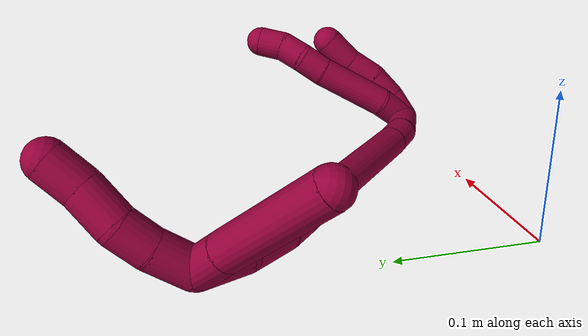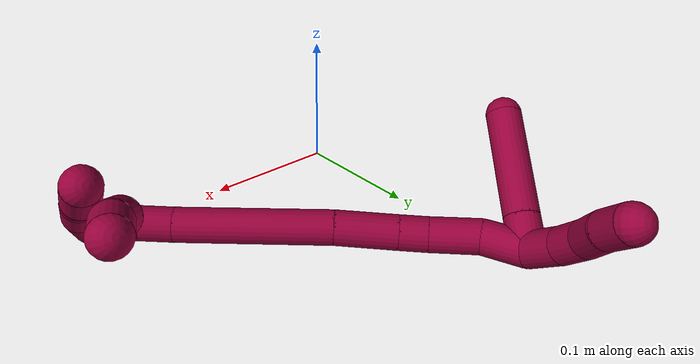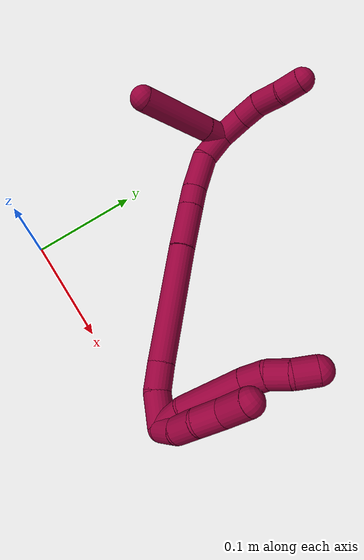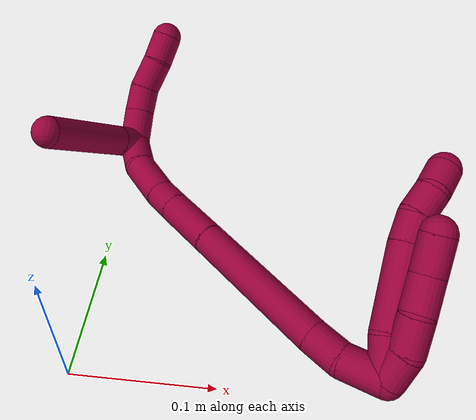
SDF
<sdf version="1.7">
 <world name="default">
  <model name="8">
   <static>0</static>
   <link name="8">
    <collision name="collision-cylinder-e_1_2_8">
     <pose>-0.001921 -0.00216 0.013846 0.154784 -0.136217 -0.01058</pose>
     <geometry><cylinder><radius>0.0125</radius><length>0.028288</length></cylinder></geometry>
     <surface>
      <friction><ode><mu>1.16</mu><mu2>1.16</mu2><slip1>0</slip1><slip2>0</slip2></ode></friction>
      <contact><ode><kp>1e+06</kp><kd>1</kd><max_vel>0</max_vel><min_depth>0.001</min_depth></ode></contact>
     </surface>
    </collision>
    <visual name="visual-cylinder-e_1_2_8">
     <pose>-0.001921 -0.00216 0.013846 0.154784 -0.136217 -0.01058</pose>
     <geometry><cylinder><radius>0.0125</radius><length>0.028288</length></cylinder></geometry>
     <material><ambient>0.584314 0 0.227451 1</ambient></material>
    </visual>
    <collision name="collision-cylinder-e_2_8_9">
     <pose>-0.00104 -0.010513 0.056921 0.208763 0.093497 0.009802</pose>
     <geometry><cylinder><radius>0.0125</radius><length>0.060018</length></cylinder></geometry>
     <surface>
      <friction><ode><mu>1.16</mu><mu2>1.16</mu2><slip1>0</slip1><slip2>0</slip2></ode></friction>
      <contact><ode><kp>1e+06</kp><kd>1</kd><max_vel>0</max_vel><min_depth>0.001</min_depth></ode></contact>
     </surface>
    </collision>
    <visual name="visual-cylinder-e_2_8_9">
     <pose>-0.00104 -0.010513 0.056921 0.208763 0.093497 0.009802</pose>
     <geometry><cylinder><radius>0.0125</radius><length>0.060018</length></cylinder></geometry>
     <material><ambient>0.584314 0 0.227451 1</ambient></material>
    </visual>
    <collision name="collision-cylinder-e_3_9_10">
     <pose>0.00282 -0.02027 0.096038 0.346049 0.100375 0.017557</pose>
     <geometry><cylinder><radius>0.0125</radius><length>0.021128</length></cylinder></geometry>
     <surface>
      <friction><ode><mu>1.16</mu><mu2>1.16</mu2><slip1>0</slip1><slip2>0</slip2></ode></friction>
      <contact><ode><kp>1e+06</kp><kd>1</kd><max_vel>0</max_vel><min_depth>0.001</min_depth></ode></contact>
     </surface>
    </collision>
    <visual name="visual-cylinder-e_3_9_10">
     <pose>0.00282 -0.02027 0.096038 0.346049 0.100375 0.017557</pose>
     <geometry><cylinder><radius>0.0125</radius><length>0.021128</length></cylinder></geometry>
     <material><ambient>0.584314 0 0.227451 1</ambient></material>
    </visual>
    <collision name="collision-cylinder-e_4_10_11">
     <pose>0.007351 -0.028428 0.11428 0.502607 0.349292 0.090535</pose>
     <geometry><cylinder><radius>0.0125</radius><length>0.020292</length></cylinder></geometry>
     <surface>
      <friction><ode><mu>1.16</mu><mu2>1.16</mu2><slip1>0</slip1><slip2>0</slip2></ode></friction>
      <contact><ode><kp>1e+06</kp><kd>1</kd><max_vel>0</max_vel><min_depth>0.001</min_depth></ode></contact>
     </surface>
    </collision>
    <visual name="visual-cylinder-e_4_10_11">
     <pose>0.007351 -0.028428 0.11428 0.502607 0.349292 0.090535</pose>
     <geometry><cylinder><radius>0.0125</radius><length>0.020292</length></cylinder></geometry>
     <material><ambient>0.584314 0 0.227451 1</ambient></material>
    </visual>
    <collision name="collision-cylinder-e_5_11_6">
     <pose>0.015675 -0.034718 0.131371 0.191988 0.499051 0.049066</pose>
     <geometry><cylinder><radius>0.0125</radius><length>0.020273</length></cylinder></geometry>
     <surface>
      <friction><ode><mu>1.16</mu><mu2>1.16</mu2><slip1>0</slip1><slip2>0</slip2></ode></friction>
      <contact><ode><kp>1e+06</kp><kd>1</kd><max_vel>0</max_vel><min_depth>0.001</min_depth></ode></contact>
     </surface>
    </collision>
    <visual name="visual-cylinder-e_5_11_6">
     <pose>0.015675 -0.034718 0.131371 0.191988 0.499051 0.049066</pose>
     <geometry><cylinder><radius>0.0125</radius><length>0.020273</length></cylinder></geometry>
     <material><ambient>0.584314 0 0.227451 1</ambient></material>
    </visual>
    <collision name="collision-cylinder-e_1_2_12">
     <pose>-0.000327 -0.007881 0.007953 0.78085 -0.029163 -0.012003</pose>
     <geometry><cylinder><radius>0.0125</radius><length>0.022404</length></cylinder></geometry>
     <surface>
      <friction><ode><mu>1.16</mu><mu2>1.16</mu2><slip1>0</slip1><slip2>0</slip2></ode></friction>
      <contact><ode><kp>1e+06</kp><kd>1</kd><max_vel>0</max_vel><min_depth>0.001</min_depth></ode></contact>
     </surface>
    </collision>
    <visual name="visual-cylinder-e_1_2_12">
     <pose>-0.000327 -0.007881 0.007953 0.78085 -0.029163 -0.012003</pose>
     <geometry><cylinder><radius>0.0125</radius><length>0.022404</length></cylinder></geometry>
     <material><ambient>0.584314 0 0.227451 1</ambient></material>
    </visual>
    <collision name="collision-cylinder-e_2_12_13">
     <pose>-0.002012 -0.021256 0.026892 0.463703 -0.110179 -0.026038</pose>
     <geometry><cylinder><radius>0.0125</radius><length>0.024713</length></cylinder></geometry>
     <surface>
      <friction><ode><mu>1.16</mu><mu2>1.16</mu2><slip1>0</slip1><slip2>0</slip2></ode></friction>
      <contact><ode><kp>1e+06</kp><kd>1</kd><max_vel>0</max_vel><min_depth>0.001</min_depth></ode></contact>
     </surface>
    </collision>
    <visual name="visual-cylinder-e_2_12_13">
     <pose>-0.002012 -0.021256 0.026892 0.463703 -0.110179 -0.026038</pose>
     <geometry><cylinder><radius>0.0125</radius><length>0.024713</length></cylinder></geometry>
     <material><ambient>0.584314 0 0.227451 1</ambient></material>
    </visual>
    <collision name="collision-cylinder-e_3_13_14">
     <pose>-0.002332 -0.030551 0.05012 0.301121 0.080819 0.012268</pose>
     <geometry><cylinder><radius>0.0125</radius><length>0.025725</length></cylinder></geometry>
     <surface>
      <friction><ode><mu>1.16</mu><mu2>1.16</mu2><slip1>0</slip1><slip2>0</slip2></ode></friction>
      <contact><ode><kp>1e+06</kp><kd>1</kd><max_vel>0</max_vel><min_depth>0.001</min_depth></ode></contact>
     </surface>
    </collision>
    <visual name="visual-cylinder-e_3_13_14">
     <pose>-0.002332 -0.030551 0.05012 0.301121 0.080819 0.012268</pose>
     <geometry><cylinder><radius>0.0125</radius><length>0.025725</length></cylinder></geometry>
     <material><ambient>0.584314 0 0.227451 1</ambient></material>
    </visual>
    <collision name="collision-cylinder-e_4_14_5">
     <pose>-0.002662 -0.039947 0.074661 0.42682 -0.100933 -0.021891</pose>
     <geometry><cylinder><radius>0.0125</radius><length>0.027159</length></cylinder></geometry>
     <surface>
      <friction><ode><mu>1.16</mu><mu2>1.16</mu2><slip1>0</slip1><slip2>0</slip2></ode></friction>
      <contact><ode><kp>1e+06</kp><kd>1</kd><max_vel>0</max_vel><min_depth>0.001</min_depth></ode></contact>
     </surface>
    </collision>
    <visual name="visual-cylinder-e_4_14_5">
     <pose>-0.002662 -0.039947 0.074661 0.42682 -0.100933 -0.021891</pose>
     <geometry><cylinder><radius>0.0125</radius><length>0.027159</length></cylinder></geometry>
     <material><ambient>0.584314 0 0.227451 1</ambient></material>
    </visual>
    <collision name="collision-cylinder-e_1_2_15">
     <pose>-0.007463 0.012323 0.005769 -1.13293 -0.501648 0.323067</pose>
     <geometry><cylinder><radius>0.0125</radius><length>0.031038</length></cylinder></geometry>
     <surface>
      <friction><ode><mu>1.16</mu><mu2>1.16</mu2><slip1>0</slip1><slip2>0</slip2></ode></friction>
      <contact><ode><kp>1e+06</kp><kd>1</kd><max_vel>0</max_vel><min_depth>0.001</min_depth></ode></contact>
     </surface>
    </collision>
    <visual name="visual-cylinder-e_1_2_15">
     <pose>-0.007463 0.012323 0.005769 -1.13293 -0.501648 0.323067</pose>
     <geometry><cylinder><radius>0.0125</radius><length>0.031038</length></cylinder></geometry>
     <material><ambient>0.584314 0 0.227451 1</ambient></material>
    </visual>
    <collision name="collision-cylinder-e_2_15_16">
     <pose>-0.019131 0.033748 0.019253 -0.867719 -0.338937 0.158219</pose>
     <geometry><cylinder><radius>0.0125</radius><length>0.025303</length></cylinder></geometry>
     <surface>
      <friction><ode><mu>1.16</mu><mu2>1.16</mu2><slip1>0</slip1><slip2>0</slip2></ode></friction>
      <contact><ode><kp>1e+06</kp><kd>1</kd><max_vel>0</max_vel><min_depth>0.001</min_depth></ode></contact>
     </surface>
    </collision>
    <visual name="visual-cylinder-e_2_15_16">
     <pose>-0.019131 0.033748 0.019253 -0.867719 -0.338937 0.158219</pose>
     <geometry><cylinder><radius>0.0125</radius><length>0.025303</length></cylinder></geometry>
     <material><ambient>0.584314 0 0.227451 1</ambient></material>
    </visual>
    <collision name="collision-cylinder-e_3_16_17">
     <pose>-0.042279 0.080514 0.063514 -0.800447 -0.346368 0.147747</pose>
     <geometry><cylinder><radius>0.0125</radius><length>0.111587</length></cylinder></geometry>
     <surface>
      <friction><ode><mu>1.16</mu><mu2>1.16</mu2><slip1>0</slip1><slip2>0</slip2></ode></friction>
      <contact><ode><kp>1e+06</kp><kd>1</kd><max_vel>0</max_vel><min_depth>0.001</min_depth></ode></contact>
     </surface>
    </collision>
    <visual name="visual-cylinder-e_3_16_17">
     <pose>-0.042279 0.080514 0.063514 -0.800447 -0.346368 0.147747</pose>
     <geometry><cylinder><radius>0.0125</radius><length>0.111587</length></cylinder></geometry>
     <material><ambient>0.584314 0 0.227451 1</ambient></material>
    </visual>
    <collision name="collision-cylinder-e_4_17_18">
     <pose>-0.0676 0.133742 0.114365 -0.827591 -0.293124 0.129474</pose>
     <geometry><cylinder><radius>0.0125</radius><length>0.044163</length></cylinder></geometry>
     <surface>
      <friction><ode><mu>1.16</mu><mu2>1.16</mu2><slip1>0</slip1><slip2>0</slip2></ode></friction>
      <contact><ode><kp>1e+06</kp><kd>1</kd><max_vel>0</max_vel><min_depth>0.001</min_depth></ode></contact>
     </surface>
    </collision>
    <visual name="visual-cylinder-e_4_17_18">
     <pose>-0.0676 0.133742 0.114365 -0.827591 -0.293124 0.129474</pose>
     <geometry><cylinder><radius>0.0125</radius><length>0.044163</length></cylinder></geometry>
     <material><ambient>0.584314 0 0.227451 1</ambient></material>
    </visual>
    <collision name="collision-cylinder-e_5_18_19">
     <pose>-0.077022 0.156472 0.135474 -0.811148 -0.298549 0.128972</pose>
     <geometry><cylinder><radius>0.0125</radius><length>0.020679</length></cylinder></geometry>
     <surface>
      <friction><ode><mu>1.16</mu><mu2>1.16</mu2><slip1>0</slip1><slip2>0</slip2></ode></friction>
      <contact><ode><kp>1e+06</kp><kd>1</kd><max_vel>0</max_vel><min_depth>0.001</min_depth></ode></contact>
     </surface>
    </collision>
    <visual name="visual-cylinder-e_5_18_19">
     <pose>-0.077022 0.156472 0.135474 -0.811148 -0.298549 0.128972</pose>
     <geometry><cylinder><radius>0.0125</radius><length>0.020679</length></cylinder></geometry>
     <material><ambient>0.584314 0 0.227451 1</ambient></material>
    </visual>
    <collision name="collision-cylinder-e_6_19_20">
     <pose>-0.085104 0.174415 0.155816 -0.672426 -0.283535 0.099677</pose>
     <geometry><cylinder><radius>0.0125</radius><length>0.036044</length></cylinder></geometry>
     <surface>
      <friction><ode><mu>1.16</mu><mu2>1.16</mu2><slip1>0</slip1><slip2>0</slip2></ode></friction>
      <contact><ode><kp>1e+06</kp><kd>1</kd><max_vel>0</max_vel><min_depth>0.001</min_depth></ode></contact>
     </surface>
    </collision>
    <visual name="visual-cylinder-e_6_19_20">
     <pose>-0.085104 0.174415 0.155816 -0.672426 -0.283535 0.099677</pose>
     <geometry><cylinder><radius>0.0125</radius><length>0.036044</length></cylinder></geometry>
     <material><ambient>0.584314 0 0.227451 1</ambient></material>
    </visual>
    <collision name="collision-cylinder-e_7_20_1">
     <pose>-0.089774 0.192929 0.182885 -0.519354 0.023828 -0.006331</pose>
     <geometry><cylinder><radius>0.0125</radius><length>0.031187</length></cylinder></geometry>
     <surface>
      <friction><ode><mu>1.16</mu><mu2>1.16</mu2><slip1>0</slip1><slip2>0</slip2></ode></friction>
      <contact><ode><kp>1e+06</kp><kd>1</kd><max_vel>0</max_vel><min_depth>0.001</min_depth></ode></contact>
     </surface>
    </collision>
    <visual name="visual-cylinder-e_7_20_1">
     <pose>-0.089774 0.192929 0.182885 -0.519354 0.023828 -0.006331</pose>
     <geometry><cylinder><radius>0.0125</radius><length>0.031187</length></cylinder></geometry>
     <material><ambient>0.584314 0 0.227451 1</ambient></material>
    </visual>
    <collision name="collision-cylinder-e_1_1_21">
     <pose>-0.090385 0.198108 0.210383 0.181237 -0.069081 -0.00628</pose>
     <geometry><cylinder><radius>0.0125</radius><length>0.028461</length></cylinder></geometry>
     <surface>
      <friction><ode><mu>1.16</mu><mu2>1.16</mu2><slip1>0</slip1><slip2>0</slip2></ode></friction>
      <contact><ode><kp>1e+06</kp><kd>1</kd><max_vel>0</max_vel><min_depth>0.001</min_depth></ode></contact>
     </surface>
    </collision>
    <visual name="visual-cylinder-e_1_1_21">
     <pose>-0.090385 0.198108 0.210383 0.181237 -0.069081 -0.00628</pose>
     <geometry><cylinder><radius>0.0125</radius><length>0.028461</length></cylinder></geometry>
     <material><ambient>0.584314 0 0.227451 1</ambient></material>
    </visual>
    <collision name="collision-cylinder-e_2_21_22">
     <pose>-0.092328 0.191897 0.234667 0.340087 -0.087493 -0.015032</pose>
     <geometry><cylinder><radius>0.0125</radius><length>0.021978</length></cylinder></geometry>
     <surface>
      <friction><ode><mu>1.16</mu><mu2>1.16</mu2><slip1>0</slip1><slip2>0</slip2></ode></friction>
      <contact><ode><kp>1e+06</kp><kd>1</kd><max_vel>0</max_vel><min_depth>0.001</min_depth></ode></contact>
     </surface>
    </collision>
    <visual name="visual-cylinder-e_2_21_22">
     <pose>-0.092328 0.191897 0.234667 0.340087 -0.087493 -0.015032</pose>
     <geometry><cylinder><radius>0.0125</radius><length>0.021978</length></cylinder></geometry>
     <material><ambient>0.584314 0 0.227451 1</ambient></material>
    </visual>
    <collision name="collision-cylinder-e_3_22_23">
     <pose>-0.092733 0.180654 0.255717 0.615702 0.042212 0.013423</pose>
     <geometry><cylinder><radius>0.0125</radius><length>0.026312</length></cylinder></geometry>
     <surface>
      <friction><ode><mu>1.16</mu><mu2>1.16</mu2><slip1>0</slip1><slip2>0</slip2></ode></friction>
      <contact><ode><kp>1e+06</kp><kd>1</kd><max_vel>0</max_vel><min_depth>0.001</min_depth></ode></contact>
     </surface>
    </collision>
    <visual name="visual-cylinder-e_3_22_23">
     <pose>-0.092733 0.180654 0.255717 0.615702 0.042212 0.013423</pose>
     <geometry><cylinder><radius>0.0125</radius><length>0.026312</length></cylinder></geometry>
     <material><ambient>0.584314 0 0.227451 1</ambient></material>
    </visual>
    <collision name="collision-cylinder-e_4_23_4">
     <pose>-0.0918 0.168013 0.276911 0.4497 0.032516 0.007438</pose>
     <geometry><cylinder><radius>0.0125</radius><length>0.023249</length></cylinder></geometry>
     <surface>
      <friction><ode><mu>1.16</mu><mu2>1.16</mu2><slip1>0</slip1><slip2>0</slip2></ode></friction>
      <contact><ode><kp>1e+06</kp><kd>1</kd><max_vel>0</max_vel><min_depth>0.001</min_depth></ode></contact>
     </surface>
    </collision>
    <visual name="visual-cylinder-e_4_23_4">
     <pose>-0.0918 0.168013 0.276911 0.4497 0.032516 0.007438</pose>
     <geometry><cylinder><radius>0.0125</radius><length>0.023249</length></cylinder></geometry>
     <material><ambient>0.584314 0 0.227451 1</ambient></material>
    </visual>
    <collision name="collision-cylinder-e_1_1_24">
     <pose>-0.099768 0.197085 0.192936 2.34225 -1.12167 -1.95753</pose>
     <geometry><cylinder><radius>0.0125</radius><length>0.023013</length></cylinder></geometry>
     <surface>
      <friction><ode><mu>1.16</mu><mu2>1.16</mu2><slip1>0</slip1><slip2>0</slip2></ode></friction>
      <contact><ode><kp>1e+06</kp><kd>1</kd><max_vel>0</max_vel><min_depth>0.001</min_depth></ode></contact>
     </surface>
    </collision>
    <visual name="visual-cylinder-e_1_1_24">
     <pose>-0.099768 0.197085 0.192936 2.34225 -1.12167 -1.95753</pose>
     <geometry><cylinder><radius>0.0125</radius><length>0.023013</length></cylinder></geometry>
     <material><ambient>0.584314 0 0.227451 1</ambient></material>
    </visual>
    <collision name="collision-cylinder-e_2_24_3">
     <pose>-0.145091 0.18242 0.177752 2.3833 -1.13879 -2.02811</pose>
     <geometry><cylinder><radius>0.0125</radius><length>0.076987</length></cylinder></geometry>
     <surface>
      <friction><ode><mu>1.16</mu><mu2>1.16</mu2><slip1>0</slip1><slip2>0</slip2></ode></friction>
      <contact><ode><kp>1e+06</kp><kd>1</kd><max_vel>0</max_vel><min_depth>0.001</min_depth></ode></contact>
     </surface>
    </collision>
    <visual name="visual-cylinder-e_2_24_3">
     <pose>-0.145091 0.18242 0.177752 2.3833 -1.13879 -2.02811</pose>
     <geometry><cylinder><radius>0.0125</radius><length>0.076987</length></cylinder></geometry>
     <material><ambient>0.584314 0 0.227451 1</ambient></material>
    </visual>
    <collision name="collision-sphere-3">
     <pose>-0.180048 0.171337 0.16605 0 -0 0</pose>
     <geometry><sphere><radius>0.0125</radius></sphere></geometry>
     <surface>
      <friction><ode><mu>1.16</mu><mu2>1.16</mu2><slip1>0</slip1><slip2>0</slip2></ode></friction>
      <contact><ode><kp>1e+06</kp><kd>1</kd><max_vel>0</max_vel><min_depth>0.001</min_depth></ode></contact>
     </surface>
    </collision>
    <visual name="visual-sphere-3">
     <pose>-0.180048 0.171337 0.16605 0 -0 0</pose>
     <geometry><sphere><radius>0.0125</radius></sphere></geometry>
     <material><ambient>0.584314 0 0.227451 1</ambient></material>
    </visual>
    <collision name="collision-sphere-24">
     <pose>-0.110134 0.193503 0.189453 0 -0 0</pose>
     <geometry><sphere><radius>0.0125</radius></sphere></geometry>
     <surface>
      <friction><ode><mu>1.16</mu><mu2>1.16</mu2><slip1>0</slip1><slip2>0</slip2></ode></friction>
      <contact><ode><kp>1e+06</kp><kd>1</kd><max_vel>0</max_vel><min_depth>0.001</min_depth></ode></contact>
     </surface>
    </collision>
    <visual name="visual-sphere-24">
     <pose>-0.110134 0.193503 0.189453 0 -0 0</pose>
     <geometry><sphere><radius>0.0125</radius></sphere></geometry>
     <material><ambient>0.584314 0 0.227451 1</ambient></material>
    </visual>
    <collision name="collision-sphere-4">
     <pose>-0.091422 0.162962 0.287374 0 -0 0</pose>
     <geometry><sphere><radius>0.0125</radius></sphere></geometry>
     <surface>
      <friction><ode><mu>1.16</mu><mu2>1.16</mu2><slip1>0</slip1><slip2>0</slip2></ode></friction>
      <contact><ode><kp>1e+06</kp><kd>1</kd><max_vel>0</max_vel><min_depth>0.001</min_depth></ode></contact>
     </surface>
    </collision>
    <visual name="visual-sphere-4">
     <pose>-0.091422 0.162962 0.287374 0 -0 0</pose>
     <geometry><sphere><radius>0.0125</radius></sphere></geometry>
     <material><ambient>0.584314 0 0.227451 1</ambient></material>
    </visual>
    <collision name="collision-sphere-23">
     <pose>-0.092178 0.173063 0.266448 0 -0 0</pose>
     <geometry><sphere><radius>0.0125</radius></sphere></geometry>
     <surface>
      <friction><ode><mu>1.16</mu><mu2>1.16</mu2><slip1>0</slip1><slip2>0</slip2></ode></friction>
      <contact><ode><kp>1e+06</kp><kd>1</kd><max_vel>0</max_vel><min_depth>0.001</min_depth></ode></contact>
     </surface>
    </collision>
    <visual name="visual-sphere-23">
     <pose>-0.092178 0.173063 0.266448 0 -0 0</pose>
     <geometry><sphere><radius>0.0125</radius></sphere></geometry>
     <material><ambient>0.584314 0 0.227451 1</ambient></material>
    </visual>
    <collision name="collision-sphere-22">
     <pose>-0.093288 0.188246 0.244987 0 -0 0</pose>
     <geometry><sphere><radius>0.0125</radius></sphere></geometry>
     <surface>
      <friction><ode><mu>1.16</mu><mu2>1.16</mu2><slip1>0</slip1><slip2>0</slip2></ode></friction>
      <contact><ode><kp>1e+06</kp><kd>1</kd><max_vel>0</max_vel><min_depth>0.001</min_depth></ode></contact>
     </surface>
    </collision>
    <visual name="visual-sphere-22">
     <pose>-0.093288 0.188246 0.244987 0 -0 0</pose>
     <geometry><sphere><radius>0.0125</radius></sphere></geometry>
     <material><ambient>0.584314 0 0.227451 1</ambient></material>
    </visual>
    <collision name="collision-sphere-21">
     <pose>-0.091368 0.195549 0.224347 0 -0 0</pose>
     <geometry><sphere><radius>0.0125</radius></sphere></geometry>
     <surface>
      <friction><ode><mu>1.16</mu><mu2>1.16</mu2><slip1>0</slip1><slip2>0</slip2></ode></friction>
      <contact><ode><kp>1e+06</kp><kd>1</kd><max_vel>0</max_vel><min_depth>0.001</min_depth></ode></contact>
     </surface>
    </collision>
    <visual name="visual-sphere-21">
     <pose>-0.091368 0.195549 0.224347 0 -0 0</pose>
     <geometry><sphere><radius>0.0125</radius></sphere></geometry>
     <material><ambient>0.584314 0 0.227451 1</ambient></material>
    </visual>
    <collision name="collision-sphere-1">
     <pose>-0.089403 0.200667 0.196419 0 -0 0</pose>
     <geometry><sphere><radius>0.0125</radius></sphere></geometry>
     <surface>
      <friction><ode><mu>1.16</mu><mu2>1.16</mu2><slip1>0</slip1><slip2>0</slip2></ode></friction>
      <contact><ode><kp>1e+06</kp><kd>1</kd><max_vel>0</max_vel><min_depth>0.001</min_depth></ode></contact>
     </surface>
    </collision>
    <visual name="visual-sphere-1">
     <pose>-0.089403 0.200667 0.196419 0 -0 0</pose>
     <geometry><sphere><radius>0.0125</radius></sphere></geometry>
     <material><ambient>0.584314 0 0.227451 1</ambient></material>
    </visual>
    <collision name="collision-sphere-6">
     <pose>0.020526 -0.036417 0.140108 0 -0 0</pose>
     <geometry><sphere><radius>0.0125</radius></sphere></geometry>
     <surface>
      <friction><ode><mu>1.16</mu><mu2>1.16</mu2><slip1>0</slip1><slip2>0</slip2></ode></friction>
      <contact><ode><kp>1e+06</kp><kd>1</kd><max_vel>0</max_vel><min_depth>0.001</min_depth></ode></contact>
     </surface>
    </collision>
    <visual name="visual-sphere-6">
     <pose>0.020526 -0.036417 0.140108 0 -0 0</pose>
     <geometry><sphere><radius>0.0125</radius></sphere></geometry>
     <material><ambient>0.584314 0 0.227451 1</ambient></material>
    </visual>
    <collision name="collision-sphere-11">
     <pose>0.010824 -0.03302 0.122634 0 -0 0</pose>
     <geometry><sphere><radius>0.0125</radius></sphere></geometry>
     <surface>
      <friction><ode><mu>1.16</mu><mu2>1.16</mu2><slip1>0</slip1><slip2>0</slip2></ode></friction>
      <contact><ode><kp>1e+06</kp><kd>1</kd><max_vel>0</max_vel><min_depth>0.001</min_depth></ode></contact>
     </surface>
    </collision>
    <visual name="visual-sphere-11">
     <pose>0.010824 -0.03302 0.122634 0 -0 0</pose>
     <geometry><sphere><radius>0.0125</radius></sphere></geometry>
     <material><ambient>0.584314 0 0.227451 1</ambient></material>
    </visual>
    <collision name="collision-sphere-10">
     <pose>0.003879 -0.023835 0.105926 0 -0 0</pose>
     <geometry><sphere><radius>0.0125</radius></sphere></geometry>
     <surface>
      <friction><ode><mu>1.16</mu><mu2>1.16</mu2><slip1>0</slip1><slip2>0</slip2></ode></friction>
      <contact><ode><kp>1e+06</kp><kd>1</kd><max_vel>0</max_vel><min_depth>0.001</min_depth></ode></contact>
     </surface>
    </collision>
    <visual name="visual-sphere-10">
     <pose>0.003879 -0.023835 0.105926 0 -0 0</pose>
     <geometry><sphere><radius>0.0125</radius></sphere></geometry>
     <material><ambient>0.584314 0 0.227451 1</ambient></material>
    </visual>
    <collision name="collision-sphere-9">
     <pose>0.001762 -0.016705 0.08615 0 -0 0</pose>
     <geometry><sphere><radius>0.0125</radius></sphere></geometry>
     <surface>
      <friction><ode><mu>1.16</mu><mu2>1.16</mu2><slip1>0</slip1><slip2>0</slip2></ode></friction>
      <contact><ode><kp>1e+06</kp><kd>1</kd><max_vel>0</max_vel><min_depth>0.001</min_depth></ode></contact>
     </surface>
    </collision>
    <visual name="visual-sphere-9">
     <pose>0.001762 -0.016705 0.08615 0 -0 0</pose>
     <geometry><sphere><radius>0.0125</radius></sphere></geometry>
     <material><ambient>0.584314 0 0.227451 1</ambient></material>
    </visual>
    <collision name="collision-sphere-2">
     <geometry><sphere><radius>0.0125</radius></sphere></geometry>
     <surface>
      <friction><ode><mu>1.16</mu><mu2>1.16</mu2><slip1>0</slip1><slip2>0</slip2></ode></friction>
      <contact><ode><kp>1e+06</kp><kd>1</kd><max_vel>0</max_vel><min_depth>0.001</min_depth></ode></contact>
     </surface>
    </collision>
    <visual name="visual-sphere-2">
     <geometry><sphere><radius>0.0125</radius></sphere></geometry>
     <material><ambient>0.584314 0 0.227451 1</ambient></material>
    </visual>
    <collision name="collision-sphere-19">
     <pose>-0.080063 0.163638 0.14228 0 -0 0</pose>
     <geometry><sphere><radius>0.0125</radius></sphere></geometry>
     <surface>
      <friction><ode><mu>1.16</mu><mu2>1.16</mu2><slip1>0</slip1><slip2>0</slip2></ode></friction>
      <contact><ode><kp>1e+06</kp><kd>1</kd><max_vel>0</max_vel><min_depth>0.001</min_depth></ode></contact>
     </surface>
    </collision>
    <visual name="visual-sphere-19">
     <pose>-0.080063 0.163638 0.14228 0 -0 0</pose>
     <geometry><sphere><radius>0.0125</radius></sphere></geometry>
     <material><ambient>0.584314 0 0.227451 1</ambient></material>
    </visual>
    <collision name="collision-sphere-8">
     <pose>-0.003841 -0.004321 0.027691 0 -0 0</pose>
     <geometry><sphere><radius>0.0125</radius></sphere></geometry>
     <surface>
      <friction><ode><mu>1.16</mu><mu2>1.16</mu2><slip1>0</slip1><slip2>0</slip2></ode></friction>
      <contact><ode><kp>1e+06</kp><kd>1</kd><max_vel>0</max_vel><min_depth>0.001</min_depth></ode></contact>
     </surface>
    </collision>
    <visual name="visual-sphere-8">
     <pose>-0.003841 -0.004321 0.027691 0 -0 0</pose>
     <geometry><sphere><radius>0.0125</radius></sphere></geometry>
     <material><ambient>0.584314 0 0.227451 1</ambient></material>
    </visual>
    <collision name="collision-sphere-12">
     <pose>-0.000653 -0.015763 0.015907 0 -0 0</pose>
     <geometry><sphere><radius>0.0125</radius></sphere></geometry>
     <surface>
      <friction><ode><mu>1.16</mu><mu2>1.16</mu2><slip1>0</slip1><slip2>0</slip2></ode></friction>
      <contact><ode><kp>1e+06</kp><kd>1</kd><max_vel>0</max_vel><min_depth>0.001</min_depth></ode></contact>
     </surface>
    </collision>
    <visual name="visual-sphere-12">
     <pose>-0.000653 -0.015763 0.015907 0 -0 0</pose>
     <geometry><sphere><radius>0.0125</radius></sphere></geometry>
     <material><ambient>0.584314 0 0.227451 1</ambient></material>
    </visual>
    <collision name="collision-sphere-13">
     <pose>-0.003371 -0.026749 0.037876 0 -0 0</pose>
     <geometry><sphere><radius>0.0125</radius></sphere></geometry>
     <surface>
      <friction><ode><mu>1.16</mu><mu2>1.16</mu2><slip1>0</slip1><slip2>0</slip2></ode></friction>
      <contact><ode><kp>1e+06</kp><kd>1</kd><max_vel>0</max_vel><min_depth>0.001</min_depth></ode></contact>
     </surface>
    </collision>
    <visual name="visual-sphere-13">
     <pose>-0.003371 -0.026749 0.037876 0 -0 0</pose>
     <geometry><sphere><radius>0.0125</radius></sphere></geometry>
     <material><ambient>0.584314 0 0.227451 1</ambient></material>
    </visual>
    <collision name="collision-sphere-14">
     <pose>-0.001294 -0.034354 0.062363 0 -0 0</pose>
     <geometry><sphere><radius>0.0125</radius></sphere></geometry>
     <surface>
      <friction><ode><mu>1.16</mu><mu2>1.16</mu2><slip1>0</slip1><slip2>0</slip2></ode></friction>
      <contact><ode><kp>1e+06</kp><kd>1</kd><max_vel>0</max_vel><min_depth>0.001</min_depth></ode></contact>
     </surface>
    </collision>
    <visual name="visual-sphere-14">
     <pose>-0.001294 -0.034354 0.062363 0 -0 0</pose>
     <geometry><sphere><radius>0.0125</radius></sphere></geometry>
     <material><ambient>0.584314 0 0.227451 1</ambient></material>
    </visual>
    <collision name="collision-sphere-5">
     <pose>-0.00403 -0.04554 0.08696 0 -0 0</pose>
     <geometry><sphere><radius>0.0125</radius></sphere></geometry>
     <surface>
      <friction><ode><mu>1.16</mu><mu2>1.16</mu2><slip1>0</slip1><slip2>0</slip2></ode></friction>
      <contact><ode><kp>1e+06</kp><kd>1</kd><max_vel>0</max_vel><min_depth>0.001</min_depth></ode></contact>
     </surface>
    </collision>
    <visual name="visual-sphere-5">
     <pose>-0.00403 -0.04554 0.08696 0 -0 0</pose>
     <geometry><sphere><radius>0.0125</radius></sphere></geometry>
     <material><ambient>0.584314 0 0.227451 1</ambient></material>
    </visual>
    <collision name="collision-sphere-15">
     <pose>-0.014925 0.024646 0.011539 0 -0 0</pose>
     <geometry><sphere><radius>0.0125</radius></sphere></geometry>
     <surface>
      <friction><ode><mu>1.16</mu><mu2>1.16</mu2><slip1>0</slip1><slip2>0</slip2></ode></friction>
      <contact><ode><kp>1e+06</kp><kd>1</kd><max_vel>0</max_vel><min_depth>0.001</min_depth></ode></contact>
     </surface>
    </collision>
    <visual name="visual-sphere-15">
     <pose>-0.014925 0.024646 0.011539 0 -0 0</pose>
     <geometry><sphere><radius>0.0125</radius></sphere></geometry>
     <material><ambient>0.584314 0 0.227451 1</ambient></material>
    </visual>
    <collision name="collision-sphere-16">
     <pose>-0.023338 0.04285 0.026968 0 -0 0</pose>
     <geometry><sphere><radius>0.0125</radius></sphere></geometry>
     <surface>
      <friction><ode><mu>1.16</mu><mu2>1.16</mu2><slip1>0</slip1><slip2>0</slip2></ode></friction>
      <contact><ode><kp>1e+06</kp><kd>1</kd><max_vel>0</max_vel><min_depth>0.001</min_depth></ode></contact>
     </surface>
    </collision>
    <visual name="visual-sphere-16">
     <pose>-0.023338 0.04285 0.026968 0 -0 0</pose>
     <geometry><sphere><radius>0.0125</radius></sphere></geometry>
     <material><ambient>0.584314 0 0.227451 1</ambient></material>
    </visual>
    <collision name="collision-sphere-17">
     <pose>-0.06122 0.118177 0.100061 0 -0 0</pose>
     <geometry><sphere><radius>0.0125</radius></sphere></geometry>
     <surface>
      <friction><ode><mu>1.16</mu><mu2>1.16</mu2><slip1>0</slip1><slip2>0</slip2></ode></friction>
      <contact><ode><kp>1e+06</kp><kd>1</kd><max_vel>0</max_vel><min_depth>0.001</min_depth></ode></contact>
     </surface>
    </collision>
    <visual name="visual-sphere-17">
     <pose>-0.06122 0.118177 0.100061 0 -0 0</pose>
     <geometry><sphere><radius>0.0125</radius></sphere></geometry>
     <material><ambient>0.584314 0 0.227451 1</ambient></material>
    </visual>
    <collision name="collision-sphere-18">
     <pose>-0.07398 0.149307 0.128669 0 -0 0</pose>
     <geometry><sphere><radius>0.0125</radius></sphere></geometry>
     <surface>
      <friction><ode><mu>1.16</mu><mu2>1.16</mu2><slip1>0</slip1><slip2>0</slip2></ode></friction>
      <contact><ode><kp>1e+06</kp><kd>1</kd><max_vel>0</max_vel><min_depth>0.001</min_depth></ode></contact>
     </surface>
    </collision>
    <visual name="visual-sphere-18">
     <pose>-0.07398 0.149307 0.128669 0 -0 0</pose>
     <geometry><sphere><radius>0.0125</radius></sphere></geometry>
     <material><ambient>0.584314 0 0.227451 1</ambient></material>
    </visual>
    <collision name="collision-sphere-20">
     <pose>-0.090146 0.185192 0.169351 0 -0 0</pose>
     <geometry><sphere><radius>0.0125</radius></sphere></geometry>
     <surface>
      <friction><ode><mu>1.16</mu><mu2>1.16</mu2><slip1>0</slip1><slip2>0</slip2></ode></friction>
      <contact><ode><kp>1e+06</kp><kd>1</kd><max_vel>0</max_vel><min_depth>0.001</min_depth></ode></contact>
     </surface>
    </collision>
    <visual name="visual-sphere-20">
     <pose>-0.090146 0.185192 0.169351 0 -0 0</pose>
     <geometry><sphere><radius>0.0125</radius></sphere></geometry>
     <material><ambient>0.584314 0 0.227451 1</ambient></material>
    </visual>
    <inertial>
     <pose>-0.051067 0.08505 0.112454 0 -0 0</pose>
     <mass>0.75</mass>
     <inertia><ixx>0.000165</ixx><ixy>0</ixy><ixz>0</ixz><iyy>0.000195</iyy><iyz>0</iyz><izz>5e-05</izz></inertia>
    </inertial>
   </link>
   <pose>0.207845 0.009264 0.016613 -1.03135 0.649914 0.391881</pose>
  </model>
 </world>
</sdf>
